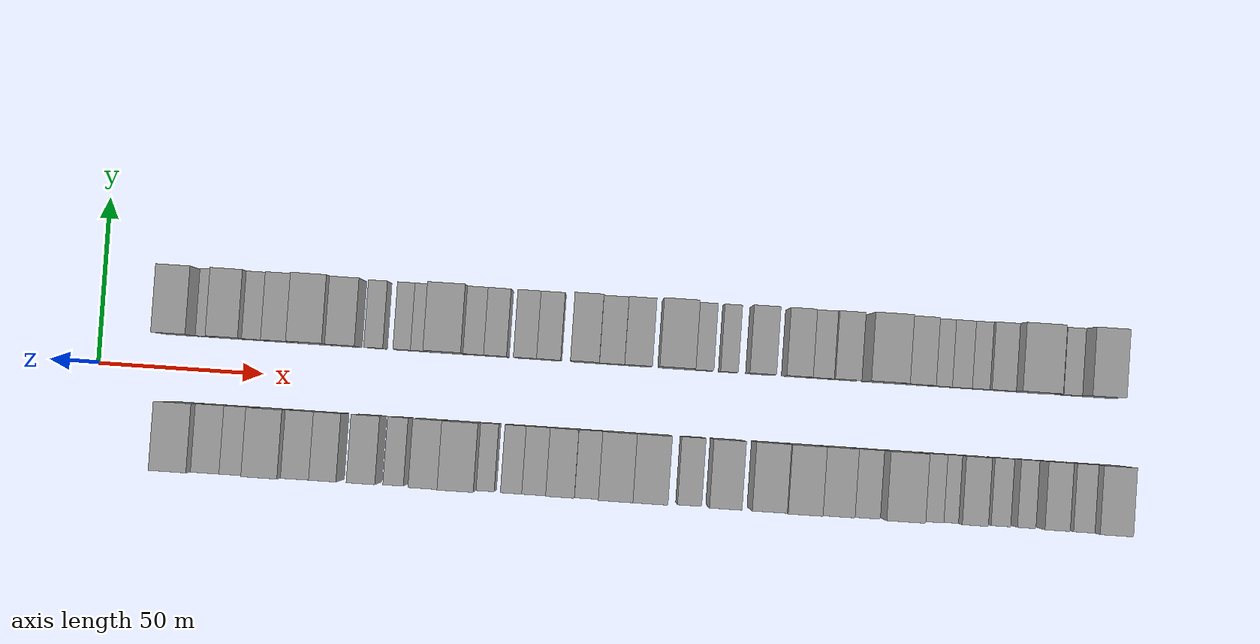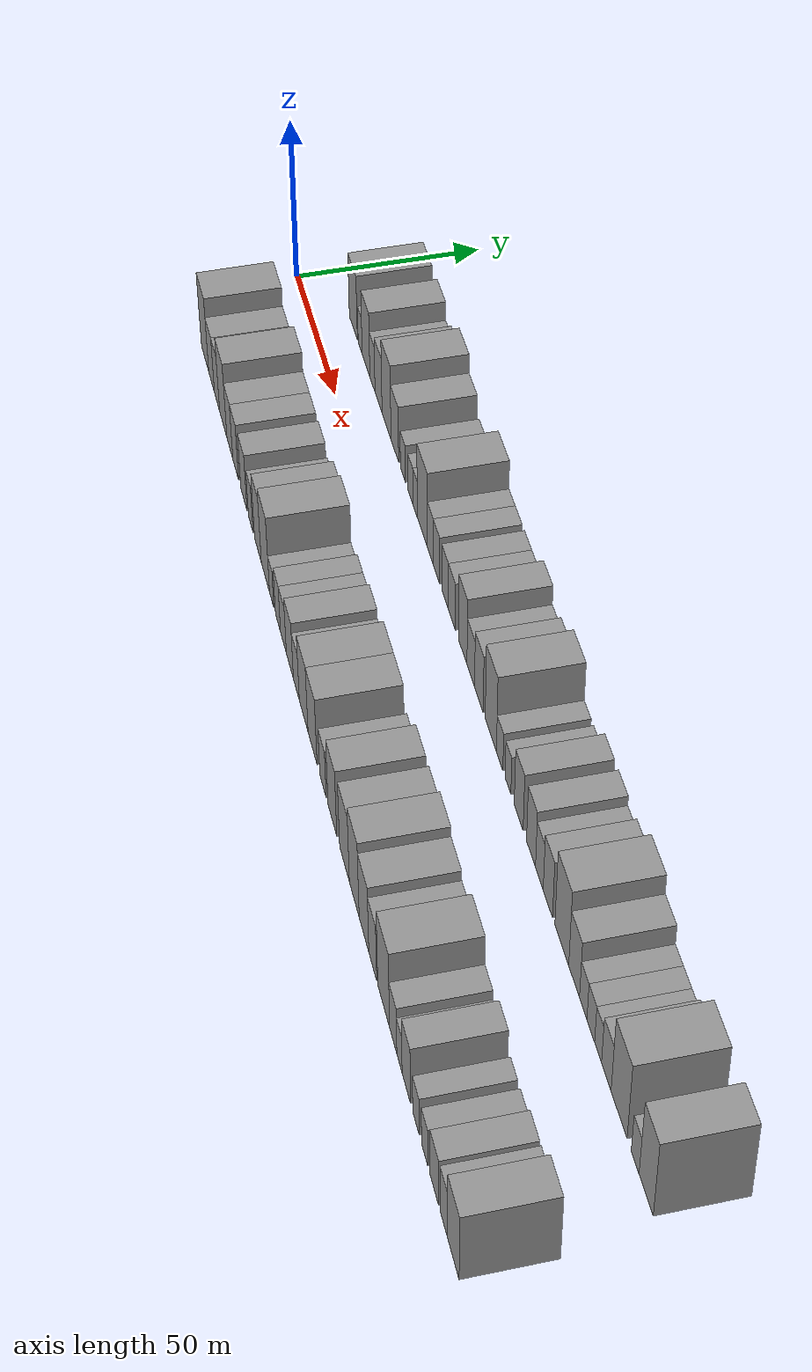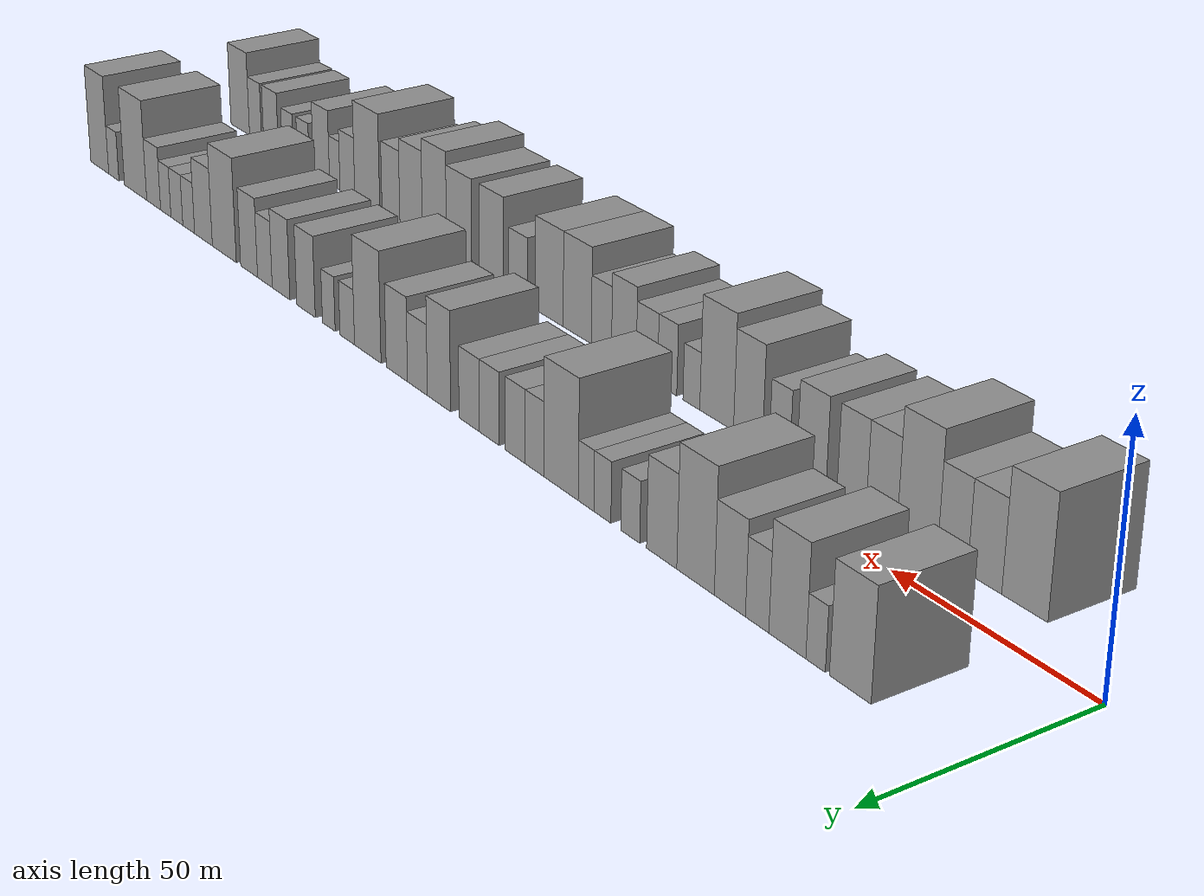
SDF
<sdf version="1.6">
 <world name="default">
  <scene>
   <sky><clouds><speed>12</speed></clouds></sky>
   <ambient>0.4 0.4 0.4 1</ambient>
   <background>0.7 0.7 0.7 1</background>
   <shadows>1</shadows>
  </scene>
  <gravity>0 0 -9.8066</gravity>
  <magnetic_field>6e-06 2.3e-05 -4.2e-05</magnetic_field>
  <physics default="0" name="default_physics" type="ode">
   <ode>
    <solver>
     <type>quick</type>
     <iters>10</iters>
     <sor>1.0</sor>
     <use_dynamic_moi_rescaling>0</use_dynamic_moi_rescaling>
    </solver>
    <constraints>
     <cfm>0</cfm>
     <erp>0.2</erp>
     <contact_max_correcting_vel>100</contact_max_correcting_vel>
     <contact_surface_layer>0.001</contact_surface_layer>
    </constraints>
   </ode>
   <max_step_size>0.004</max_step_size>
   <real_time_factor>1</real_time_factor>
   <real_time_update_rate>250</real_time_update_rate>
  </physics>
  <light name="sun" type="directional">
   <pose>0 0 10 0 0 0</pose>
   <diffuse>0.8 0.8 0.8 1</diffuse>
   <specular>0.2 0.2 0.2 1</specular>
   <attenuation>
    <range>1000</range>
    <constant>0.9</constant>
    <linear>0.01</linear>
    <quadratic>0.001</quadratic>
   </attenuation>
   <direction>-0.5 0.1 -0.9</direction>
  </light>
  <model name="building_1">
   <static>1</static>
   <pose>25.0306 20.0000 0 0.000000 0.000000 1.570796</pose>
   <link name="link">
    <pose>0 0 10.50 0 0 0</pose>
    <collision name="collision"><geometry><box><size>20.0000 10.0612 21.0000</size></box></geometry></collision>
    <visual name="visual">
     <cast_shadows>0</cast_shadows>
     <geometry><box><size>20.0000 10.0612 21.0000</size></box></geometry>
     <material>
      <script>
       <uri>model://grey_wall/materials/scripts</uri>
       <uri>model://grey_wall/materials/textures</uri>
       <name>vrc/grey_wall</name>
      </script>
     </material>
    </visual>
   </link>
  </model>
  <model name="building_2">
   <static>1</static>
   <pose>33.4875 20.0000 0 0.000000 0.000000 1.570796</pose>
   <link name="link">
    <pose>0 0 6.00 0 0 0</pose>
    <collision name="collision"><geometry><box><size>20.0000 4.8526 12.0000</size></box></geometry></collision>
    <visual name="visual">
     <cast_shadows>0</cast_shadows>
     <geometry><box><size>20.0000 4.8526 12.0000</size></box></geometry>
     <material>
      <script>
       <uri>model://grey_wall/materials/scripts</uri>
       <uri>model://grey_wall/materials/textures</uri>
       <name>vrc/grey_wall</name>
      </script>
     </material>
    </visual>
   </link>
  </model>
  <model name="building_3">
   <static>1</static>
   <pose>40.6501 20.0000 0 0.000000 0.000000 1.570796</pose>
   <link name="link">
    <pose>0 0 10.50 0 0 0</pose>
    <collision name="collision"><geometry><box><size>20.0000 9.4726 21.0000</size></box></geometry></collision>
    <visual name="visual">
     <cast_shadows>0</cast_shadows>
     <geometry><box><size>20.0000 9.4726 21.0000</size></box></geometry>
     <material>
      <script>
       <uri>model://grey_wall/materials/scripts</uri>
       <uri>model://grey_wall/materials/textures</uri>
       <name>vrc/grey_wall</name>
      </script>
     </material>
    </visual>
   </link>
  </model>
  <model name="building_4">
   <static>1</static>
   <pose>48.4580 20.0000 0 0.000000 0.000000 1.570796</pose>
   <link name="link">
    <pose>0 0 7.50 0 0 0</pose>
    <collision name="collision"><geometry><box><size>20.0000 6.1433 15.0000</size></box></geometry></collision>
    <visual name="visual">
     <cast_shadows>0</cast_shadows>
     <geometry><box><size>20.0000 6.1433 15.0000</size></box></geometry>
     <material>
      <script>
       <uri>model://grey_wall/materials/scripts</uri>
       <uri>model://grey_wall/materials/textures</uri>
       <name>vrc/grey_wall</name>
      </script>
     </material>
    </visual>
   </link>
  </model>
  <model name="building_5">
   <static>1</static>
   <pose>55.7201 20.0000 0 0.000000 0.000000 1.570796</pose>
   <link name="link">
    <pose>0 0 9.00 0 0 0</pose>
    <collision name="collision"><geometry><box><size>20.0000 8.3807 18.0000</size></box></geometry></collision>
    <visual name="visual">
     <cast_shadows>0</cast_shadows>
     <geometry><box><size>20.0000 8.3807 18.0000</size></box></geometry>
     <material>
      <script>
       <uri>model://grey_wall/materials/scripts</uri>
       <uri>model://grey_wall/materials/textures</uri>
       <name>vrc/grey_wall</name>
      </script>
     </material>
    </visual>
   </link>
  </model>
  <model name="building_6">
   <static>1</static>
   <pose>65.1428 20.0000 0 0.000000 0.000000 1.570796</pose>
   <link name="link">
    <pose>0 0 12.00 0 0 0</pose>
    <collision name="collision"><geometry><box><size>20.0000 10.4647 24.0000</size></box></geometry></collision>
    <visual name="visual">
     <cast_shadows>0</cast_shadows>
     <geometry><box><size>20.0000 10.4647 24.0000</size></box></geometry>
     <material>
      <script>
       <uri>model://grey_wall/materials/scripts</uri>
       <uri>model://grey_wall/materials/textures</uri>
       <name>vrc/grey_wall</name>
      </script>
     </material>
    </visual>
   </link>
  </model>
  <model name="building_7">
   <static>1</static>
   <pose>74.7315 20.0000 0 0.000000 0.000000 1.570796</pose>
   <link name="link">
    <pose>0 0 9.00 0 0 0</pose>
    <collision name="collision"><geometry><box><size>20.0000 8.7126 18.0000</size></box></geometry></collision>
    <visual name="visual">
     <cast_shadows>0</cast_shadows>
     <geometry><box><size>20.0000 8.7126 18.0000</size></box></geometry>
     <material>
      <script>
       <uri>model://grey_wall/materials/scripts</uri>
       <uri>model://grey_wall/materials/textures</uri>
       <name>vrc/grey_wall</name>
      </script>
     </material>
    </visual>
   </link>
  </model>
  <model name="building_8">
   <static>1</static>
   <pose>83.9068 20.0000 0 0.000000 0.000000 1.570796</pose>
   <link name="link">
    <pose>0 0 6.00 0 0 0</pose>
    <collision name="collision"><geometry><box><size>20.0000 5.6382 12.0000</size></box></geometry></collision>
    <visual name="visual">
     <cast_shadows>0</cast_shadows>
     <geometry><box><size>20.0000 5.6382 12.0000</size></box></geometry>
     <material>
      <script>
       <uri>model://grey_wall/materials/scripts</uri>
       <uri>model://grey_wall/materials/textures</uri>
       <name>vrc/grey_wall</name>
      </script>
     </material>
    </visual>
   </link>
  </model>
  <model name="building_9">
   <static>1</static>
   <pose>92.3290 20.0000 0 0.000000 0.000000 1.570796</pose>
   <link name="link">
    <pose>0 0 6.00 0 0 0</pose>
    <collision name="collision"><geometry><box><size>20.0000 5.2062 12.0000</size></box></geometry></collision>
    <visual name="visual">
     <cast_shadows>0</cast_shadows>
     <geometry><box><size>20.0000 5.2062 12.0000</size></box></geometry>
     <material>
      <script>
       <uri>model://grey_wall/materials/scripts</uri>
       <uri>model://grey_wall/materials/textures</uri>
       <name>vrc/grey_wall</name>
      </script>
     </material>
    </visual>
   </link>
  </model>
  <model name="building_10">
   <static>1</static>
   <pose>97.3606 20.0000 0 0.000000 0.000000 1.570796</pose>
   <link name="link">
    <pose>0 0 6.00 0 0 0</pose>
    <collision name="collision"><geometry><box><size>20.0000 4.8569 12.0000</size></box></geometry></collision>
    <visual name="visual">
     <cast_shadows>0</cast_shadows>
     <geometry><box><size>20.0000 4.8569 12.0000</size></box></geometry>
     <material>
      <script>
       <uri>model://grey_wall/materials/scripts</uri>
       <uri>model://grey_wall/materials/textures</uri>
       <name>vrc/grey_wall</name>
      </script>
     </material>
    </visual>
   </link>
  </model>
  <model name="building_11">
   <static>1</static>
   <pose>105.2721 20.0000 0 0.000000 0.000000 1.570796</pose>
   <link name="link">
    <pose>0 0 12.00 0 0 0</pose>
    <collision name="collision"><geometry><box><size>20.0000 10.9661 24.0000</size></box></geometry></collision>
    <visual name="visual">
     <cast_shadows>0</cast_shadows>
     <geometry><box><size>20.0000 10.9661 24.0000</size></box></geometry>
     <material>
      <script>
       <uri>model://grey_wall/materials/scripts</uri>
       <uri>model://grey_wall/materials/textures</uri>
       <name>vrc/grey_wall</name>
      </script>
     </material>
    </visual>
   </link>
  </model>
  <model name="building_12">
   <static>1</static>
   <pose>113.7938 20.0000 0 0.000000 0.000000 1.570796</pose>
   <link name="link">
    <pose>0 0 7.50 0 0 0</pose>
    <collision name="collision"><geometry><box><size>20.0000 6.0773 15.0000</size></box></geometry></collision>
    <visual name="visual">
     <cast_shadows>0</cast_shadows>
     <geometry><box><size>20.0000 6.0773 15.0000</size></box></geometry>
     <material>
      <script>
       <uri>model://grey_wall/materials/scripts</uri>
       <uri>model://grey_wall/materials/textures</uri>
       <name>vrc/grey_wall</name>
      </script>
     </material>
    </visual>
   </link>
  </model>
  <model name="building_13">
   <static>1</static>
   <pose>120.2307 20.0000 0 0.000000 0.000000 1.570796</pose>
   <link name="link">
    <pose>0 0 7.50 0 0 0</pose>
    <collision name="collision"><geometry><box><size>20.0000 6.7966 15.0000</size></box></geometry></collision>
    <visual name="visual">
     <cast_shadows>0</cast_shadows>
     <geometry><box><size>20.0000 6.7966 15.0000</size></box></geometry>
     <material>
      <script>
       <uri>model://grey_wall/materials/scripts</uri>
       <uri>model://grey_wall/materials/textures</uri>
       <name>vrc/grey_wall</name>
      </script>
     </material>
    </visual>
   </link>
  </model>
  <model name="building_14">
   <static>1</static>
   <pose>129.0535 20.0000 0 0.000000 0.000000 1.570796</pose>
   <link name="link">
    <pose>0 0 7.50 0 0 0</pose>
    <collision name="collision"><geometry><box><size>20.0000 6.8490 15.0000</size></box></geometry></collision>
    <visual name="visual">
     <cast_shadows>0</cast_shadows>
     <geometry><box><size>20.0000 6.8490 15.0000</size></box></geometry>
     <material>
      <script>
       <uri>model://grey_wall/materials/scripts</uri>
       <uri>model://grey_wall/materials/textures</uri>
       <name>vrc/grey_wall</name>
      </script>
     </material>
    </visual>
   </link>
  </model>
  <model name="building_15">
   <static>1</static>
   <pose>136.0422 20.0000 0 0.000000 0.000000 1.570796</pose>
   <link name="link">
    <pose>0 0 7.50 0 0 0</pose>
    <collision name="collision"><geometry><box><size>20.0000 7.1284 15.0000</size></box></geometry></collision>
    <visual name="visual">
     <cast_shadows>0</cast_shadows>
     <geometry><box><size>20.0000 7.1284 15.0000</size></box></geometry>
     <material>
      <script>
       <uri>model://grey_wall/materials/scripts</uri>
       <uri>model://grey_wall/materials/textures</uri>
       <name>vrc/grey_wall</name>
      </script>
     </material>
    </visual>
   </link>
  </model>
  <model name="building_16">
   <static>1</static>
   <pose>146.8464 20.0000 0 0.000000 0.000000 1.570796</pose>
   <link name="link">
    <pose>0 0 10.50 0 0 0</pose>
    <collision name="collision"><geometry><box><size>20.0000 8.4800 21.0000</size></box></geometry></collision>
    <visual name="visual">
     <cast_shadows>0</cast_shadows>
     <geometry><box><size>20.0000 8.4800 21.0000</size></box></geometry>
     <material>
      <script>
       <uri>model://grey_wall/materials/scripts</uri>
       <uri>model://grey_wall/materials/textures</uri>
       <name>vrc/grey_wall</name>
      </script>
     </material>
    </visual>
   </link>
  </model>
  <model name="building_17">
   <static>1</static>
   <pose>154.7855 20.0000 0 0.000000 0.000000 1.570796</pose>
   <link name="link">
    <pose>0 0 7.50 0 0 0</pose>
    <collision name="collision"><geometry><box><size>20.0000 7.3981 15.0000</size></box></geometry></collision>
    <visual name="visual">
     <cast_shadows>0</cast_shadows>
     <geometry><box><size>20.0000 7.3981 15.0000</size></box></geometry>
     <material>
      <script>
       <uri>model://grey_wall/materials/scripts</uri>
       <uri>model://grey_wall/materials/textures</uri>
       <name>vrc/grey_wall</name>
      </script>
     </material>
    </visual>
   </link>
  </model>
  <model name="building_18">
   <static>1</static>
   <pose>162.5635 20.0000 0 0.000000 0.000000 1.570796</pose>
   <link name="link">
    <pose>0 0 9.00 0 0 0</pose>
    <collision name="collision"><geometry><box><size>20.0000 8.1580 18.0000</size></box></geometry></collision>
    <visual name="visual">
     <cast_shadows>0</cast_shadows>
     <geometry><box><size>20.0000 8.1580 18.0000</size></box></geometry>
     <material>
      <script>
       <uri>model://grey_wall/materials/scripts</uri>
       <uri>model://grey_wall/materials/textures</uri>
       <name>vrc/grey_wall</name>
      </script>
     </material>
    </visual>
   </link>
  </model>
  <model name="building_19">
   <static>1</static>
   <pose>173.8788 20.0000 0 0.000000 0.000000 1.570796</pose>
   <link name="link">
    <pose>0 0 12.00 0 0 0</pose>
    <collision name="collision"><geometry><box><size>20.0000 10.4726 24.0000</size></box></geometry></collision>
    <visual name="visual">
     <cast_shadows>0</cast_shadows>
     <geometry><box><size>20.0000 10.4726 24.0000</size></box></geometry>
     <material>
      <script>
       <uri>model://grey_wall/materials/scripts</uri>
       <uri>model://grey_wall/materials/textures</uri>
       <name>vrc/grey_wall</name>
      </script>
     </material>
    </visual>
   </link>
  </model>
  <model name="building_20">
   <static>1</static>
   <pose>182.0511 20.0000 0 0.000000 0.000000 1.570796</pose>
   <link name="link">
    <pose>0 0 6.00 0 0 0</pose>
    <collision name="collision"><geometry><box><size>20.0000 5.8721 12.0000</size></box></geometry></collision>
    <visual name="visual">
     <cast_shadows>0</cast_shadows>
     <geometry><box><size>20.0000 5.8721 12.0000</size></box></geometry>
     <material>
      <script>
       <uri>model://grey_wall/materials/scripts</uri>
       <uri>model://grey_wall/materials/textures</uri>
       <name>vrc/grey_wall</name>
      </script>
     </material>
    </visual>
   </link>
  </model>
  <model name="building_21">
   <static>1</static>
   <pose>189.6062 20.0000 0 0.000000 0.000000 1.570796</pose>
   <link name="link">
    <pose>0 0 6.00 0 0 0</pose>
    <collision name="collision"><geometry><box><size>20.0000 5.2382 12.0000</size></box></geometry></collision>
    <visual name="visual">
     <cast_shadows>0</cast_shadows>
     <geometry><box><size>20.0000 5.2382 12.0000</size></box></geometry>
     <material>
      <script>
       <uri>model://grey_wall/materials/scripts</uri>
       <uri>model://grey_wall/materials/textures</uri>
       <name>vrc/grey_wall</name>
      </script>
     </material>
    </visual>
   </link>
  </model>
  <model name="building_22">
   <static>1</static>
   <pose>199.1457 20.0000 0 0.000000 0.000000 1.570796</pose>
   <link name="link">
    <pose>0 0 9.00 0 0 0</pose>
    <collision name="collision"><geometry><box><size>20.0000 7.8409 18.0000</size></box></geometry></collision>
    <visual name="visual">
     <cast_shadows>0</cast_shadows>
     <geometry><box><size>20.0000 7.8409 18.0000</size></box></geometry>
     <material>
      <script>
       <uri>model://grey_wall/materials/scripts</uri>
       <uri>model://grey_wall/materials/textures</uri>
       <name>vrc/grey_wall</name>
      </script>
     </material>
    </visual>
   </link>
  </model>
  <model name="building_23">
   <static>1</static>
   <pose>209.9331 20.0000 0 0.000000 0.000000 1.570796</pose>
   <link name="link">
    <pose>0 0 9.00 0 0 0</pose>
    <collision name="collision"><geometry><box><size>20.0000 7.7338 18.0000</size></box></geometry></collision>
    <visual name="visual">
     <cast_shadows>0</cast_shadows>
     <geometry><box><size>20.0000 7.7338 18.0000</size></box></geometry>
     <material>
      <script>
       <uri>model://grey_wall/materials/scripts</uri>
       <uri>model://grey_wall/materials/textures</uri>
       <name>vrc/grey_wall</name>
      </script>
     </material>
    </visual>
   </link>
  </model>
  <model name="building_24">
   <static>1</static>
   <pose>217.0716 20.0000 0 0.000000 0.000000 1.570796</pose>
   <link name="link">
    <pose>0 0 7.50 0 0 0</pose>
    <collision name="collision"><geometry><box><size>20.0000 6.5432 15.0000</size></box></geometry></collision>
    <visual name="visual">
     <cast_shadows>0</cast_shadows>
     <geometry><box><size>20.0000 6.5432 15.0000</size></box></geometry>
     <material>
      <script>
       <uri>model://grey_wall/materials/scripts</uri>
       <uri>model://grey_wall/materials/textures</uri>
       <name>vrc/grey_wall</name>
      </script>
     </material>
    </visual>
   </link>
  </model>
  <model name="building_25">
   <static>1</static>
   <pose>224.2039 20.0000 0 0.000000 0.000000 1.570796</pose>
   <link name="link">
    <pose>0 0 9.00 0 0 0</pose>
    <collision name="collision"><geometry><box><size>20.0000 7.7216 18.0000</size></box></geometry></collision>
    <visual name="visual">
     <cast_shadows>0</cast_shadows>
     <geometry><box><size>20.0000 7.7216 18.0000</size></box></geometry>
     <material>
      <script>
       <uri>model://grey_wall/materials/scripts</uri>
       <uri>model://grey_wall/materials/textures</uri>
       <name>vrc/grey_wall</name>
      </script>
     </material>
    </visual>
   </link>
  </model>
  <model name="building_26">
   <static>1</static>
   <pose>235.6873 20.0000 0 0.000000 0.000000 1.570796</pose>
   <link name="link">
    <pose>0 0 12.00 0 0 0</pose>
    <collision name="collision"><geometry><box><size>20.0000 11.2451 24.0000</size></box></geometry></collision>
    <visual name="visual">
     <cast_shadows>0</cast_shadows>
     <geometry><box><size>20.0000 11.2451 24.0000</size></box></geometry>
     <material>
      <script>
       <uri>model://grey_wall/materials/scripts</uri>
       <uri>model://grey_wall/materials/textures</uri>
       <name>vrc/grey_wall</name>
      </script>
     </material>
    </visual>
   </link>
  </model>
  <model name="building_27">
   <static>1</static>
   <pose>245.5917 20.0000 0 0.000000 0.000000 1.570796</pose>
   <link name="link">
    <pose>0 0 9.00 0 0 0</pose>
    <collision name="collision"><geometry><box><size>20.0000 8.5637 18.0000</size></box></geometry></collision>
    <visual name="visual">
     <cast_shadows>0</cast_shadows>
     <geometry><box><size>20.0000 8.5637 18.0000</size></box></geometry>
     <material>
      <script>
       <uri>model://grey_wall/materials/scripts</uri>
       <uri>model://grey_wall/materials/textures</uri>
       <name>vrc/grey_wall</name>
      </script>
     </material>
    </visual>
   </link>
  </model>
  <model name="building_28">
   <static>1</static>
   <pose>252.7836 20.0000 0 0.000000 0.000000 1.570796</pose>
   <link name="link">
    <pose>0 0 6.00 0 0 0</pose>
    <collision name="collision"><geometry><box><size>20.0000 5.8200 12.0000</size></box></geometry></collision>
    <visual name="visual">
     <cast_shadows>0</cast_shadows>
     <geometry><box><size>20.0000 5.8200 12.0000</size></box></geometry>
     <material>
      <script>
       <uri>model://grey_wall/materials/scripts</uri>
       <uri>model://grey_wall/materials/textures</uri>
       <name>vrc/grey_wall</name>
      </script>
     </material>
    </visual>
   </link>
  </model>
  <model name="building_29">
   <static>1</static>
   <pose>258.6537 20.0000 0 0.000000 0.000000 1.570796</pose>
   <link name="link">
    <pose>0 0 6.00 0 0 0</pose>
    <collision name="collision"><geometry><box><size>20.0000 5.9202 12.0000</size></box></geometry></collision>
    <visual name="visual">
     <cast_shadows>0</cast_shadows>
     <geometry><box><size>20.0000 5.9202 12.0000</size></box></geometry>
     <material>
      <script>
       <uri>model://grey_wall/materials/scripts</uri>
       <uri>model://grey_wall/materials/textures</uri>
       <name>vrc/grey_wall</name>
      </script>
     </material>
    </visual>
   </link>
  </model>
  <model name="building_30">
   <static>1</static>
   <pose>264.2388 20.0000 0 0.000000 0.000000 1.570796</pose>
   <link name="link">
    <pose>0 0 6.00 0 0 0</pose>
    <collision name="collision"><geometry><box><size>20.0000 5.2501 12.0000</size></box></geometry></collision>
    <visual name="visual">
     <cast_shadows>0</cast_shadows>
     <geometry><box><size>20.0000 5.2501 12.0000</size></box></geometry>
     <material>
      <script>
       <uri>model://grey_wall/materials/scripts</uri>
       <uri>model://grey_wall/materials/textures</uri>
       <name>vrc/grey_wall</name>
      </script>
     </material>
    </visual>
   </link>
  </model>
  <model name="building_31">
   <static>1</static>
   <pose>270.4426 20.0000 0 0.000000 0.000000 1.570796</pose>
   <link name="link">
    <pose>0 0 7.50 0 0 0</pose>
    <collision name="collision"><geometry><box><size>20.0000 7.1574 15.0000</size></box></geometry></collision>
    <visual name="visual">
     <cast_shadows>0</cast_shadows>
     <geometry><box><size>20.0000 7.1574 15.0000</size></box></geometry>
     <material>
      <script>
       <uri>model://grey_wall/materials/scripts</uri>
       <uri>model://grey_wall/materials/textures</uri>
       <name>vrc/grey_wall</name>
      </script>
     </material>
    </visual>
   </link>
  </model>
  <model name="building_32">
   <static>1</static>
   <pose>279.8806 20.0000 0 0.000000 0.000000 1.570796</pose>
   <link name="link">
    <pose>0 0 12.00 0 0 0</pose>
    <collision name="collision"><geometry><box><size>20.0000 11.7185 24.0000</size></box></geometry></collision>
    <visual name="visual">
     <cast_shadows>0</cast_shadows>
     <geometry><box><size>20.0000 11.7185 24.0000</size></box></geometry>
     <material>
      <script>
       <uri>model://grey_wall/materials/scripts</uri>
       <uri>model://grey_wall/materials/textures</uri>
       <name>vrc/grey_wall</name>
      </script>
     </material>
    </visual>
   </link>
  </model>
  <model name="building_33">
   <static>1</static>
   <pose>291.5039 20.0000 0 0.000000 0.000000 1.570796</pose>
   <link name="link">
    <pose>0 0 6.00 0 0 0</pose>
    <collision name="collision"><geometry><box><size>20.0000 5.5281 12.0000</size></box></geometry></collision>
    <visual name="visual">
     <cast_shadows>0</cast_shadows>
     <geometry><box><size>20.0000 5.5281 12.0000</size></box></geometry>
     <material>
      <script>
       <uri>model://grey_wall/materials/scripts</uri>
       <uri>model://grey_wall/materials/textures</uri>
       <name>vrc/grey_wall</name>
      </script>
     </material>
    </visual>
   </link>
  </model>
  <model name="building_34">
   <static>1</static>
   <pose>299.2291 20.0000 0 0.000000 0.000000 1.570796</pose>
   <link name="link">
    <pose>0 0 12.00 0 0 0</pose>
    <collision name="collision"><geometry><box><size>20.0000 9.9224 24.0000</size></box></geometry></collision>
    <visual name="visual">
     <cast_shadows>0</cast_shadows>
     <geometry><box><size>20.0000 9.9224 24.0000</size></box></geometry>
     <material>
      <script>
       <uri>model://grey_wall/materials/scripts</uri>
       <uri>model://grey_wall/materials/textures</uri>
       <name>vrc/grey_wall</name>
      </script>
     </material>
    </visual>
   </link>
  </model>
  <model name="building_35">
   <static>1</static>
   <pose>28.4641 -20.0000 0 0.000000 0.000000 1.570796</pose>
   <link name="link">
    <pose>0 0 12.00 0 0 0</pose>
    <collision name="collision"><geometry><box><size>20.0000 10.9283 24.0000</size></box></geometry></collision>
    <visual name="visual">
     <cast_shadows>0</cast_shadows>
     <geometry><box><size>20.0000 10.9283 24.0000</size></box></geometry>
     <material>
      <script>
       <uri>model://grey_wall/materials/scripts</uri>
       <uri>model://grey_wall/materials/textures</uri>
       <name>vrc/grey_wall</name>
      </script>
     </material>
    </visual>
   </link>
  </model>
  <model name="building_36">
   <static>1</static>
   <pose>38.1066 -20.0000 0 0.000000 0.000000 1.570796</pose>
   <link name="link">
    <pose>0 0 9.00 0 0 0</pose>
    <collision name="collision"><geometry><box><size>20.0000 8.3566 18.0000</size></box></geometry></collision>
    <visual name="visual">
     <cast_shadows>0</cast_shadows>
     <geometry><box><size>20.0000 8.3566 18.0000</size></box></geometry>
     <material>
      <script>
       <uri>model://grey_wall/materials/scripts</uri>
       <uri>model://grey_wall/materials/textures</uri>
       <name>vrc/grey_wall</name>
      </script>
     </material>
    </visual>
   </link>
  </model>
  <model name="building_37">
   <static>1</static>
   <pose>46.0715 -20.0000 0 0.000000 0.000000 1.570796</pose>
   <link name="link">
    <pose>0 0 9.00 0 0 0</pose>
    <collision name="collision"><geometry><box><size>20.0000 7.5733 18.0000</size></box></geometry></collision>
    <visual name="visual">
     <cast_shadows>0</cast_shadows>
     <geometry><box><size>20.0000 7.5733 18.0000</size></box></geometry>
     <material>
      <script>
       <uri>model://grey_wall/materials/scripts</uri>
       <uri>model://grey_wall/materials/textures</uri>
       <name>vrc/grey_wall</name>
      </script>
     </material>
    </visual>
   </link>
  </model>
  <model name="building_38">
   <static>1</static>
   <pose>55.0820 -20.0000 0 0.000000 0.000000 1.570796</pose>
   <link name="link">
    <pose>0 0 12.00 0 0 0</pose>
    <collision name="collision"><geometry><box><size>20.0000 10.4478 24.0000</size></box></geometry></collision>
    <visual name="visual">
     <cast_shadows>0</cast_shadows>
     <geometry><box><size>20.0000 10.4478 24.0000</size></box></geometry>
     <material>
      <script>
       <uri>model://grey_wall/materials/scripts</uri>
       <uri>model://grey_wall/materials/textures</uri>
       <name>vrc/grey_wall</name>
      </script>
     </material>
    </visual>
   </link>
  </model>
  <model name="building_39">
   <static>1</static>
   <pose>64.4289 -20.0000 0 0.000000 0.000000 1.570796</pose>
   <link name="link">
    <pose>0 0 9.00 0 0 0</pose>
    <collision name="collision"><geometry><box><size>20.0000 8.2460 18.0000</size></box></geometry></collision>
    <visual name="visual">
     <cast_shadows>0</cast_shadows>
     <geometry><box><size>20.0000 8.2460 18.0000</size></box></geometry>
     <material>
      <script>
       <uri>model://grey_wall/materials/scripts</uri>
       <uri>model://grey_wall/materials/textures</uri>
       <name>vrc/grey_wall</name>
      </script>
     </material>
    </visual>
   </link>
  </model>
  <model name="building_40">
   <static>1</static>
   <pose>72.5586 -20.0000 0 0.000000 0.000000 1.570796</pose>
   <link name="link">
    <pose>0 0 9.00 0 0 0</pose>
    <collision name="collision"><geometry><box><size>20.0000 8.0134 18.0000</size></box></geometry></collision>
    <visual name="visual">
     <cast_shadows>0</cast_shadows>
     <geometry><box><size>20.0000 8.0134 18.0000</size></box></geometry>
     <material>
      <script>
       <uri>model://grey_wall/materials/scripts</uri>
       <uri>model://grey_wall/materials/textures</uri>
       <name>vrc/grey_wall</name>
      </script>
     </material>
    </visual>
   </link>
  </model>
  <model name="building_41">
   <static>1</static>
   <pose>83.7648 -20.0000 0 0.000000 0.000000 1.570796</pose>
   <link name="link">
    <pose>0 0 9.00 0 0 0</pose>
    <collision name="collision"><geometry><box><size>20.0000 8.3991 18.0000</size></box></geometry></collision>
    <visual name="visual">
     <cast_shadows>0</cast_shadows>
     <geometry><box><size>20.0000 8.3991 18.0000</size></box></geometry>
     <material>
      <script>
       <uri>model://grey_wall/materials/scripts</uri>
       <uri>model://grey_wall/materials/textures</uri>
       <name>vrc/grey_wall</name>
      </script>
     </material>
    </visual>
   </link>
  </model>
  <model name="building_42">
   <static>1</static>
   <pose>92.9873 -20.0000 0 0.000000 0.000000 1.570796</pose>
   <link name="link">
    <pose>0 0 7.50 0 0 0</pose>
    <collision name="collision"><geometry><box><size>20.0000 6.0458 15.0000</size></box></geometry></collision>
    <visual name="visual">
     <cast_shadows>0</cast_shadows>
     <geometry><box><size>20.0000 6.0458 15.0000</size></box></geometry>
     <material>
      <script>
       <uri>model://grey_wall/materials/scripts</uri>
       <uri>model://grey_wall/materials/textures</uri>
       <name>vrc/grey_wall</name>
      </script>
     </material>
    </visual>
   </link>
  </model>
  <model name="building_43">
   <static>1</static>
   <pose>102.3616 -20.0000 0 0.000000 0.000000 1.570796</pose>
   <link name="link">
    <pose>0 0 10.50 0 0 0</pose>
    <collision name="collision"><geometry><box><size>20.0000 8.7028 21.0000</size></box></geometry></collision>
    <visual name="visual">
     <cast_shadows>0</cast_shadows>
     <geometry><box><size>20.0000 8.7028 21.0000</size></box></geometry>
     <material>
      <script>
       <uri>model://grey_wall/materials/scripts</uri>
       <uri>model://grey_wall/materials/textures</uri>
       <name>vrc/grey_wall</name>
      </script>
     </material>
    </visual>
   </link>
  </model>
  <model name="building_44">
   <static>1</static>
   <pose>111.9658 -20.0000 0 0.000000 0.000000 1.570796</pose>
   <link name="link">
    <pose>0 0 12.00 0 0 0</pose>
    <collision name="collision"><geometry><box><size>20.0000 10.5055 24.0000</size></box></geometry></collision>
    <visual name="visual">
     <cast_shadows>0</cast_shadows>
     <geometry><box><size>20.0000 10.5055 24.0000</size></box></geometry>
     <material>
      <script>
       <uri>model://grey_wall/materials/scripts</uri>
       <uri>model://grey_wall/materials/textures</uri>
       <name>vrc/grey_wall</name>
      </script>
     </material>
    </visual>
   </link>
  </model>
  <model name="building_45">
   <static>1</static>
   <pose>119.9010 -20.0000 0 0.000000 0.000000 1.570796</pose>
   <link name="link">
    <pose>0 0 6.00 0 0 0</pose>
    <collision name="collision"><geometry><box><size>20.0000 5.3648 12.0000</size></box></geometry></collision>
    <visual name="visual">
     <cast_shadows>0</cast_shadows>
     <geometry><box><size>20.0000 5.3648 12.0000</size></box></geometry>
     <material>
      <script>
       <uri>model://grey_wall/materials/scripts</uri>
       <uri>model://grey_wall/materials/textures</uri>
       <name>vrc/grey_wall</name>
      </script>
     </material>
    </visual>
   </link>
  </model>
  <model name="building_46">
   <static>1</static>
   <pose>127.7226 -20.0000 0 0.000000 0.000000 1.570796</pose>
   <link name="link">
    <pose>0 0 7.50 0 0 0</pose>
    <collision name="collision"><geometry><box><size>20.0000 6.2784 15.0000</size></box></geometry></collision>
    <visual name="visual">
     <cast_shadows>0</cast_shadows>
     <geometry><box><size>20.0000 6.2784 15.0000</size></box></geometry>
     <material>
      <script>
       <uri>model://grey_wall/materials/scripts</uri>
       <uri>model://grey_wall/materials/textures</uri>
       <name>vrc/grey_wall</name>
      </script>
     </material>
    </visual>
   </link>
  </model>
  <model name="building_47">
   <static>1</static>
   <pose>134.4351 -20.0000 0 0.000000 0.000000 1.570796</pose>
   <link name="link">
    <pose>0 0 7.50 0 0 0</pose>
    <collision name="collision"><geometry><box><size>20.0000 7.1467 15.0000</size></box></geometry></collision>
    <visual name="visual">
     <cast_shadows>0</cast_shadows>
     <geometry><box><size>20.0000 7.1467 15.0000</size></box></geometry>
     <material>
      <script>
       <uri>model://grey_wall/materials/scripts</uri>
       <uri>model://grey_wall/materials/textures</uri>
       <name>vrc/grey_wall</name>
      </script>
     </material>
    </visual>
   </link>
  </model>
  <model name="building_48">
   <static>1</static>
   <pose>142.2150 -20.0000 0 0.000000 0.000000 1.570796</pose>
   <link name="link">
    <pose>0 0 9.00 0 0 0</pose>
    <collision name="collision"><geometry><box><size>20.0000 8.4129 18.0000</size></box></geometry></collision>
    <visual name="visual">
     <cast_shadows>0</cast_shadows>
     <geometry><box><size>20.0000 8.4129 18.0000</size></box></geometry>
     <material>
      <script>
       <uri>model://grey_wall/materials/scripts</uri>
       <uri>model://grey_wall/materials/textures</uri>
       <name>vrc/grey_wall</name>
      </script>
     </material>
    </visual>
   </link>
  </model>
  <model name="building_49">
   <static>1</static>
   <pose>149.9372 -20.0000 0 0.000000 0.000000 1.570796</pose>
   <link name="link">
    <pose>0 0 7.50 0 0 0</pose>
    <collision name="collision"><geometry><box><size>20.0000 7.0316 15.0000</size></box></geometry></collision>
    <visual name="visual">
     <cast_shadows>0</cast_shadows>
     <geometry><box><size>20.0000 7.0316 15.0000</size></box></geometry>
     <material>
      <script>
       <uri>model://grey_wall/materials/scripts</uri>
       <uri>model://grey_wall/materials/textures</uri>
       <name>vrc/grey_wall</name>
      </script>
     </material>
    </visual>
   </link>
  </model>
  <model name="building_50">
   <static>1</static>
   <pose>158.4925 -20.0000 0 0.000000 0.000000 1.570796</pose>
   <link name="link">
    <pose>0 0 10.50 0 0 0</pose>
    <collision name="collision"><geometry><box><size>20.0000 10.0790 21.0000</size></box></geometry></collision>
    <visual name="visual">
     <cast_shadows>0</cast_shadows>
     <geometry><box><size>20.0000 10.0790 21.0000</size></box></geometry>
     <material>
      <script>
       <uri>model://grey_wall/materials/scripts</uri>
       <uri>model://grey_wall/materials/textures</uri>
       <name>vrc/grey_wall</name>
      </script>
     </material>
    </visual>
   </link>
  </model>
  <model name="building_51">
   <static>1</static>
   <pose>168.6437 -20.0000 0 0.000000 0.000000 1.570796</pose>
   <link name="link">
    <pose>0 0 10.50 0 0 0</pose>
    <collision name="collision"><geometry><box><size>20.0000 10.2234 21.0000</size></box></geometry></collision>
    <visual name="visual">
     <cast_shadows>0</cast_shadows>
     <geometry><box><size>20.0000 10.2234 21.0000</size></box></geometry>
     <material>
      <script>
       <uri>model://grey_wall/materials/scripts</uri>
       <uri>model://grey_wall/materials/textures</uri>
       <name>vrc/grey_wall</name>
      </script>
     </material>
    </visual>
   </link>
  </model>
  <model name="building_52">
   <static>1</static>
   <pose>180.3109 -20.0000 0 0.000000 0.000000 1.570796</pose>
   <link name="link">
    <pose>0 0 7.50 0 0 0</pose>
    <collision name="collision"><geometry><box><size>20.0000 7.1110 15.0000</size></box></geometry></collision>
    <visual name="visual">
     <cast_shadows>0</cast_shadows>
     <geometry><box><size>20.0000 7.1110 15.0000</size></box></geometry>
     <material>
      <script>
       <uri>model://grey_wall/materials/scripts</uri>
       <uri>model://grey_wall/materials/textures</uri>
       <name>vrc/grey_wall</name>
      </script>
     </material>
    </visual>
   </link>
  </model>
  <model name="building_53">
   <static>1</static>
   <pose>190.5988 -20.0000 0 0.000000 0.000000 1.570796</pose>
   <link name="link">
    <pose>0 0 10.50 0 0 0</pose>
    <collision name="collision"><geometry><box><size>20.0000 9.4647 21.0000</size></box></geometry></collision>
    <visual name="visual">
     <cast_shadows>0</cast_shadows>
     <geometry><box><size>20.0000 9.4647 21.0000</size></box></geometry>
     <material>
      <script>
       <uri>model://grey_wall/materials/scripts</uri>
       <uri>model://grey_wall/materials/textures</uri>
       <name>vrc/grey_wall</name>
      </script>
     </material>
    </visual>
   </link>
  </model>
  <model name="building_54">
   <static>1</static>
   <pose>203.4242 -20.0000 0 0.000000 0.000000 1.570796</pose>
   <link name="link">
    <pose>0 0 10.50 0 0 0</pose>
    <collision name="collision"><geometry><box><size>20.0000 10.1860 21.0000</size></box></geometry></collision>
    <visual name="visual">
     <cast_shadows>0</cast_shadows>
     <geometry><box><size>20.0000 10.1860 21.0000</size></box></geometry>
     <material>
      <script>
       <uri>model://grey_wall/materials/scripts</uri>
       <uri>model://grey_wall/materials/textures</uri>
       <name>vrc/grey_wall</name>
      </script>
     </material>
    </visual>
   </link>
  </model>
  <model name="building_55">
   <static>1</static>
   <pose>213.5533 -20.0000 0 0.000000 0.000000 1.570796</pose>
   <link name="link">
    <pose>0 0 12.00 0 0 0</pose>
    <collision name="collision"><geometry><box><size>20.0000 10.0723 24.0000</size></box></geometry></collision>
    <visual name="visual">
     <cast_shadows>0</cast_shadows>
     <geometry><box><size>20.0000 10.0723 24.0000</size></box></geometry>
     <material>
      <script>
       <uri>model://grey_wall/materials/scripts</uri>
       <uri>model://grey_wall/materials/textures</uri>
       <name>vrc/grey_wall</name>
      </script>
     </material>
    </visual>
   </link>
  </model>
  <model name="building_56">
   <static>1</static>
   <pose>223.4179 -20.0000 0 0.000000 0.000000 1.570796</pose>
   <link name="link">
    <pose>0 0 10.50 0 0 0</pose>
    <collision name="collision"><geometry><box><size>20.0000 9.6569 21.0000</size></box></geometry></collision>
    <visual name="visual">
     <cast_shadows>0</cast_shadows>
     <geometry><box><size>20.0000 9.6569 21.0000</size></box></geometry>
     <material>
      <script>
       <uri>model://grey_wall/materials/scripts</uri>
       <uri>model://grey_wall/materials/textures</uri>
       <name>vrc/grey_wall</name>
      </script>
     </material>
    </visual>
   </link>
  </model>
  <model name="building_57">
   <static>1</static>
   <pose>232.1430 -20.0000 0 0.000000 0.000000 1.570796</pose>
   <link name="link">
    <pose>0 0 9.00 0 0 0</pose>
    <collision name="collision"><geometry><box><size>20.0000 7.7932 18.0000</size></box></geometry></collision>
    <visual name="visual">
     <cast_shadows>0</cast_shadows>
     <geometry><box><size>20.0000 7.7932 18.0000</size></box></geometry>
     <material>
      <script>
       <uri>model://grey_wall/materials/scripts</uri>
       <uri>model://grey_wall/materials/textures</uri>
       <name>vrc/grey_wall</name>
      </script>
     </material>
    </visual>
   </link>
  </model>
  <model name="building_58">
   <static>1</static>
   <pose>242.6727 -20.0000 0 0.000000 0.000000 1.570796</pose>
   <link name="link">
    <pose>0 0 12.00 0 0 0</pose>
    <collision name="collision"><geometry><box><size>20.0000 11.2663 24.0000</size></box></geometry></collision>
    <visual name="visual">
     <cast_shadows>0</cast_shadows>
     <geometry><box><size>20.0000 11.2663 24.0000</size></box></geometry>
     <material>
      <script>
       <uri>model://grey_wall/materials/scripts</uri>
       <uri>model://grey_wall/materials/textures</uri>
       <name>vrc/grey_wall</name>
      </script>
     </material>
    </visual>
   </link>
  </model>
  <model name="building_59">
   <static>1</static>
   <pose>251.7234 -20.0000 0 0.000000 0.000000 1.570796</pose>
   <link name="link">
    <pose>0 0 7.50 0 0 0</pose>
    <collision name="collision"><geometry><box><size>20.0000 6.8351 15.0000</size></box></geometry></collision>
    <visual name="visual">
     <cast_shadows>0</cast_shadows>
     <geometry><box><size>20.0000 6.8351 15.0000</size></box></geometry>
     <material>
      <script>
       <uri>model://grey_wall/materials/scripts</uri>
       <uri>model://grey_wall/materials/textures</uri>
       <name>vrc/grey_wall</name>
      </script>
     </material>
    </visual>
   </link>
  </model>
  <model name="building_60">
   <static>1</static>
   <pose>257.5860 -20.0000 0 0.000000 0.000000 1.570796</pose>
   <link name="link">
    <pose>0 0 6.00 0 0 0</pose>
    <collision name="collision"><geometry><box><size>20.0000 4.8899 12.0000</size></box></geometry></collision>
    <visual name="visual">
     <cast_shadows>0</cast_shadows>
     <geometry><box><size>20.0000 4.8899 12.0000</size></box></geometry>
     <material>
      <script>
       <uri>model://grey_wall/materials/scripts</uri>
       <uri>model://grey_wall/materials/textures</uri>
       <name>vrc/grey_wall</name>
      </script>
     </material>
    </visual>
   </link>
  </model>
  <model name="building_61">
   <static>1</static>
   <pose>263.8447 -20.0000 0 0.000000 0.000000 1.570796</pose>
   <link name="link">
    <pose>0 0 9.00 0 0 0</pose>
    <collision name="collision"><geometry><box><size>20.0000 7.6275 18.0000</size></box></geometry></collision>
    <visual name="visual">
     <cast_shadows>0</cast_shadows>
     <geometry><box><size>20.0000 7.6275 18.0000</size></box></geometry>
     <material>
      <script>
       <uri>model://grey_wall/materials/scripts</uri>
       <uri>model://grey_wall/materials/textures</uri>
       <name>vrc/grey_wall</name>
      </script>
     </material>
    </visual>
   </link>
  </model>
  <model name="building_62">
   <static>1</static>
   <pose>272.5551 -20.0000 0 0.000000 0.000000 1.570796</pose>
   <link name="link">
    <pose>0 0 6.00 0 0 0</pose>
    <collision name="collision"><geometry><box><size>20.0000 5.7934 12.0000</size></box></geometry></collision>
    <visual name="visual">
     <cast_shadows>0</cast_shadows>
     <geometry><box><size>20.0000 5.7934 12.0000</size></box></geometry>
     <material>
      <script>
       <uri>model://grey_wall/materials/scripts</uri>
       <uri>model://grey_wall/materials/textures</uri>
       <name>vrc/grey_wall</name>
      </script>
     </material>
    </visual>
   </link>
  </model>
  <model name="building_63">
   <static>1</static>
   <pose>280.1810 -20.0000 0 0.000000 0.000000 1.570796</pose>
   <link name="link">
    <pose>0 0 6.00 0 0 0</pose>
    <collision name="collision"><geometry><box><size>20.0000 5.4583 12.0000</size></box></geometry></collision>
    <visual name="visual">
     <cast_shadows>0</cast_shadows>
     <geometry><box><size>20.0000 5.4583 12.0000</size></box></geometry>
     <material>
      <script>
       <uri>model://grey_wall/materials/scripts</uri>
       <uri>model://grey_wall/materials/textures</uri>
       <name>vrc/grey_wall</name>
      </script>
     </material>
    </visual>
   </link>
  </model>
  <model name="building_64">
   <static>1</static>
   <pose>288.6175 -20.0000 0 0.000000 0.000000 1.570796</pose>
   <link name="link">
    <pose>0 0 7.50 0 0 0</pose>
    <collision name="collision"><geometry><box><size>20.0000 7.4147 15.0000</size></box></geometry></collision>
    <visual name="visual">
     <cast_shadows>0</cast_shadows>
     <geometry><box><size>20.0000 7.4147 15.0000</size></box></geometry>
     <material>
      <script>
       <uri>model://grey_wall/materials/scripts</uri>
       <uri>model://grey_wall/materials/textures</uri>
       <name>vrc/grey_wall</name>
      </script>
     </material>
    </visual>
   </link>
  </model>
  <model name="building_65">
   <static>1</static>
   <pose>296.4678 -20.0000 0 0.000000 0.000000 1.570796</pose>
   <link name="link">
    <pose>0 0 7.50 0 0 0</pose>
    <collision name="collision"><geometry><box><size>20.0000 6.2860 15.0000</size></box></geometry></collision>
    <visual name="visual">
     <cast_shadows>0</cast_shadows>
     <geometry><box><size>20.0000 6.2860 15.0000</size></box></geometry>
     <material>
      <script>
       <uri>model://grey_wall/materials/scripts</uri>
       <uri>model://grey_wall/materials/textures</uri>
       <name>vrc/grey_wall</name>
      </script>
     </material>
    </visual>
   </link>
  </model>
  <model name="building_66">
   <static>1</static>
   <pose>304.4645 -20.0000 0 0.000000 0.000000 1.570796</pose>
   <link name="link">
    <pose>0 0 10.50 0 0 0</pose>
    <collision name="collision"><geometry><box><size>20.0000 9.7074 21.0000</size></box></geometry></collision>
    <visual name="visual">
     <cast_shadows>0</cast_shadows>
     <geometry><box><size>20.0000 9.7074 21.0000</size></box></geometry>
     <material>
      <script>
       <uri>model://grey_wall/materials/scripts</uri>
       <uri>model://grey_wall/materials/textures</uri>
       <name>vrc/grey_wall</name>
      </script>
     </material>
    </visual>
   </link>
  </model>
 </world>
</sdf>
